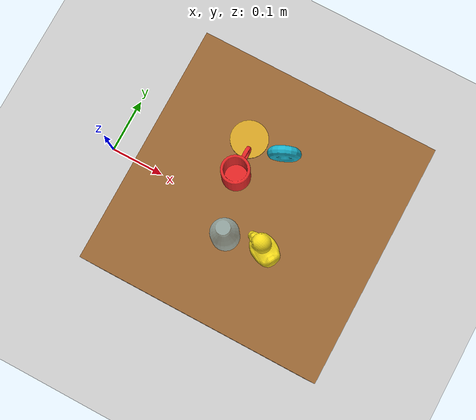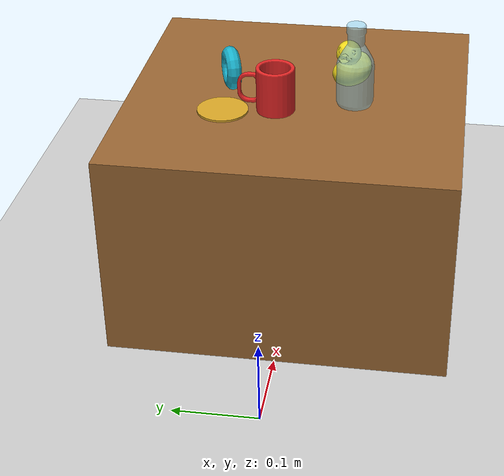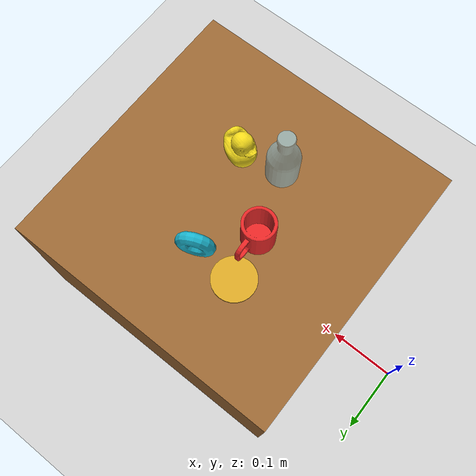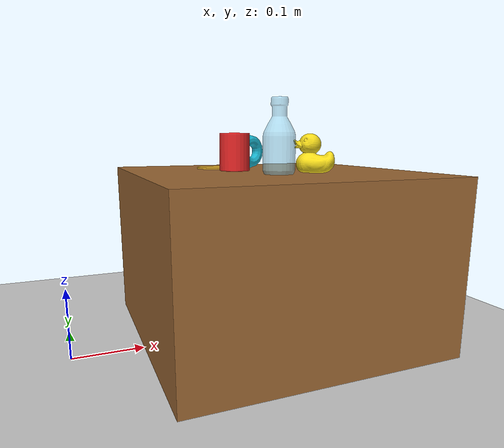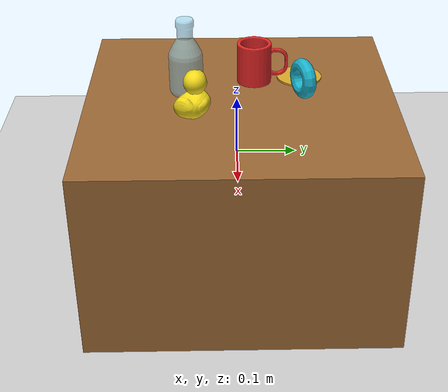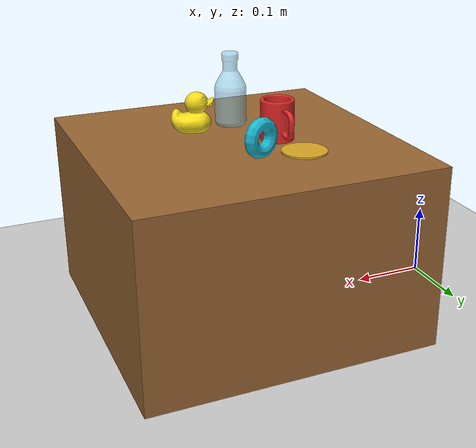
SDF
<?xml version="1.0" ?>
<sdf version="1.9">
  <world name="pick_and_place_world">

    <!-- Physics -->
    <physics name="default_physics" type="ode">
      <max_step_size>0.001</max_step_size>
      <real_time_factor>1.0</real_time_factor>
      <real_time_update_rate>1000</real_time_update_rate>
    </physics>

    <!-- Plugins -->
    <plugin filename="gz-sim-physics-system" name="gz::sim::systems::Physics"/>
    <plugin filename="gz-sim-scene-broadcaster-system" name="gz::sim::systems::SceneBroadcaster"/>
    <plugin filename="gz-sim-user-commands-system" name="gz::sim::systems::UserCommands"/>
    <plugin filename="gz-sim-sensors-system" name="gz::sim::systems::Sensors">
      <render_engine>ogre2</render_engine>
    </plugin>

    <!-- Lighting -->
    <light type="directional" name="sun">
      <cast_shadows>true</cast_shadows>
      <pose>0 0 10 0 0 0</pose>
      <diffuse>0.9 0.9 0.9 1</diffuse>
      <specular>0.3 0.3 0.3 1</specular>
      <direction>-0.5 0.1 -0.9</direction>
    </light>

    <light type="point" name="fill_light">
      <pose>0 -2 3 0 0 0</pose>
      <diffuse>0.4 0.4 0.4 1</diffuse>
      <specular>0.1 0.1 0.1 1</specular>
      <attenuation>
        <range>20</range>
      </attenuation>
    </light>

    <!-- Ground Plane -->
    <model name="ground_plane">
      <static>true</static>
      <link name="link">
        <collision name="collision">
          <geometry>
            <plane>
              <normal>0 0 1</normal>
              <size>5 5</size>
            </plane>
          </geometry>
        </collision>
        <visual name="visual">
          <geometry>
            <plane>
              <normal>0 0 1</normal>
              <size>5 5</size>
            </plane>
          </geometry>
          <material>
            <ambient>0.8 0.8 0.8 1</ambient>
            <diffuse>0.8 0.8 0.8 1</diffuse>
          </material>
        </visual>
      </link>
    </model>

    <!-- Table -->
    <model name="table">
      <static>true</static>
      <pose>0.30 0 0.125 0 0 0</pose>
      <link name="table_link">
        <collision name="collision">
          <geometry>
            <box>
              <size>0.40 0.40 0.25</size>
            </box>
          </geometry>
        </collision>
        <visual name="visual">
          <geometry>
            <box>
              <size>0.40 0.40 0.25</size>
            </box>
          </geometry>
          <material>
            <ambient>0.6 0.4 0.2 1</ambient>
            <diffuse>0.6 0.4 0.2 1</diffuse>
          </material>
        </visual>
      </link>
    </model>

    <!-- Object 1: Coffee Mug with handle -->
    <model name="coffee_mug">
      <pose>0.25 0.03 0.251 0 0 0</pose>
      <link name="link">
        <inertial>
          <mass>0.045</mass>
          <inertia>
            <ixx>0.00002</ixx>
            <iyy>0.00002</iyy>
            <izz>0.00002</izz>
          </inertia>
        </inertial>
        <collision name="body_col">
          <pose>0 -0.005 0.0275 0 0 0</pose>
          <geometry>
            <cylinder>
              <radius>0.0225</radius>
              <length>0.055</length>
            </cylinder>
          </geometry>
          <surface>
            <friction>
              <ode>
                <mu>50.0</mu>
                <mu2>50.0</mu2>
              </ode>
            </friction>
          </surface>
        </collision>
        <collision name="handle_col">
          <pose>0 0.026 0.0275 0 0 0</pose>
          <geometry>
            <box>
              <size>0.012 0.016 0.038</size>
            </box>
          </geometry>
          <surface>
            <friction>
              <ode>
                <mu>50.0</mu>
                <mu2>50.0</mu2>
              </ode>
            </friction>
          </surface>
        </collision>
        <visual name="visual">
          <geometry>
            <mesh>
              <uri>file:///home/tienle/.gemini/antigravity/scratch/robot_3dof_ws/src/robot_3dof/meshes/objects/mug.obj</uri>
            </mesh>
          </geometry>
          <material>
            <ambient>0.9 0.15 0.15 1</ambient>
            <diffuse>0.9 0.15 0.15 1</diffuse>
          </material>
        </visual>
      </link>
    </model>

    <!-- Object 2: Rubber Duck (organic curved surface) -->
    <model name="rubber_duck">
      <pose>0.34 -0.06 0.251 0 0 -0.5</pose>
      <link name="link">
        <inertial>
          <mass>0.035</mass>
          <inertia>
            <ixx>0.000015</ixx>
            <iyy>0.000015</iyy>
            <izz>0.000015</izz>
          </inertia>
        </inertial>
        <collision name="body_col">
          <pose>0 0 0.027 0 0 0</pose>
          <geometry>
            <box>
              <size>0.056 0.038 0.052</size>
            </box>
          </geometry>
          <surface>
            <friction>
              <ode>
                <mu>50.0</mu>
                <mu2>50.0</mu2>
              </ode>
            </friction>
          </surface>
        </collision>
        <visual name="visual">
          <geometry>
            <mesh>
              <uri>file:///home/tienle/.gemini/antigravity/scratch/robot_3dof_ws/src/robot_3dof/meshes/objects/duck.obj</uri>
            </mesh>
          </geometry>
          <material>
            <ambient>0.95 0.85 0.1 1</ambient>
            <diffuse>0.95 0.85 0.1 1</diffuse>
          </material>
        </visual>
      </link>
    </model>

    <!-- Object 3: Torus Toy (donut ring shape) -->
    <model name="torus_toy">
      <pose>0.30 0.08 0.251 0 0 0.4</pose>
      <link name="link">
        <inertial>
          <mass>0.030</mass>
          <inertia>
            <ixx>0.00001</ixx>
            <iyy>0.00001</iyy>
            <izz>0.00001</izz>
          </inertia>
        </inertial>
        <collision name="body_col">
          <pose>0 0 0.026 1.5708 0 0</pose>
          <geometry>
            <cylinder>
              <radius>0.026</radius>
              <length>0.017</length>
            </cylinder>
          </geometry>
          <surface>
            <friction>
              <ode>
                <mu>50.0</mu>
                <mu2>50.0</mu2>
              </ode>
            </friction>
          </surface>
        </collision>
        <visual name="visual">
          <geometry>
            <mesh>
              <uri>file:///home/tienle/.gemini/antigravity/scratch/robot_3dof_ws/src/robot_3dof/meshes/objects/torus.obj</uri>
            </mesh>
          </geometry>
          <material>
            <ambient>0.1 0.7 0.8 1</ambient>
            <diffuse>0.1 0.7 0.8 1</diffuse>
          </material>
        </visual>
      </link>
    </model>

    <!-- Object 4: Transparent Glass Bottle (Benchmark failure: refraction & missing depth) -->
    <model name="glass_bottle">
      <pose>0.28 -0.07 0.251 0 0 0</pose>
      <link name="link">
        <inertial>
          <mass>0.080</mass>
          <inertia>
            <ixx>0.00004</ixx>
            <iyy>0.00004</iyy>
            <izz>0.00002</izz>
          </inertia>
        </inertial>
        <collision name="bottle_col">
          <pose>0 0 0.05 0 0 0</pose>
          <geometry>
            <cylinder>
              <radius>0.022</radius>
              <length>0.10</length>
            </cylinder>
          </geometry>
          <surface>
            <friction>
              <ode>
                <mu>30.0</mu>
                <mu2>30.0</mu2>
              </ode>
            </friction>
          </surface>
        </collision>
        <visual name="visual">
          <geometry>
            <mesh>
              <uri>file:///home/tienle/.gemini/antigravity/scratch/robot_3dof_ws/src/robot_3dof/meshes/objects/glass_bottle.obj</uri>
            </mesh>
          </geometry>
          <material>
            <ambient>0.6 0.85 0.95 0.6</ambient>
            <diffuse>0.6 0.85 0.95 0.6</diffuse>
            <specular>0.9 0.95 1.0 1</specular>
          </material>
        </visual>
      </link>
    </model>

    <!-- Object 5: Flat Thin Disc (Benchmark failure: lack of antipodal clearance) -->
    <model name="flat_disc">
      <pose>0.24 0.08 0.251 0 0 0</pose>
      <link name="link">
        <inertial>
          <mass>0.015</mass>
          <inertia>
            <ixx>0.000005</ixx>
            <iyy>0.000005</iyy>
            <izz>0.00001</izz>
          </inertia>
        </inertial>
        <collision name="disc_col">
          <pose>0 0 0.00125 0 0 0</pose>
          <geometry>
            <cylinder>
              <radius>0.030</radius>
              <length>0.0025</length>
            </cylinder>
          </geometry>
          <surface>
            <friction>
              <ode>
                <mu>30.0</mu>
                <mu2>30.0</mu2>
              </ode>
            </friction>
          </surface>
        </collision>
        <visual name="visual">
          <geometry>
            <mesh>
              <uri>file:///home/tienle/.gemini/antigravity/scratch/robot_3dof_ws/src/robot_3dof/meshes/objects/flat_disc.obj</uri>
            </mesh>
          </geometry>
          <material>
            <ambient>0.85 0.65 0.15 1</ambient>
            <diffuse>0.85 0.65 0.15 1</diffuse>
          </material>
        </visual>
      </link>
    </model>

  </world>
</sdf>
